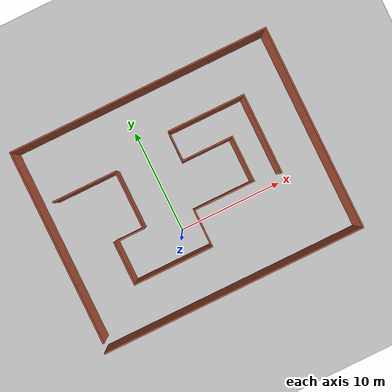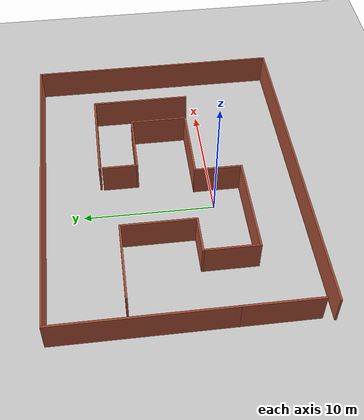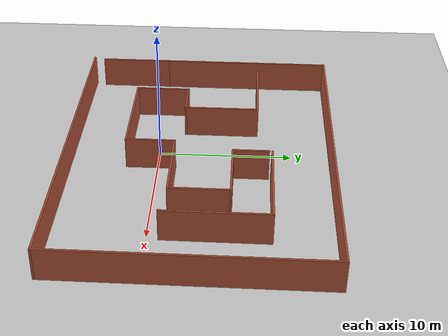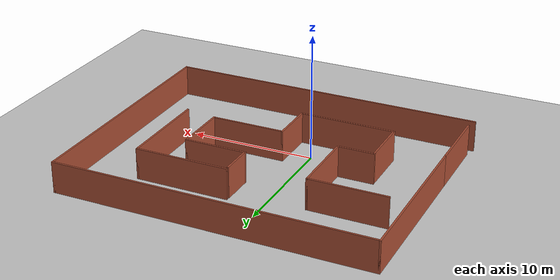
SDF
<sdf version="1.6">
 <world name="default">
  <include><uri>model://ground_plane</uri></include>
  <include><uri>model://sun</uri></include>
  <scene><shadows>false</shadows></scene>
  <physics type="ode">
   <real_time_update_rate>1000.0</real_time_update_rate>
   <max_step_size>0.001</max_step_size>
   <real_time_factor>1</real_time_factor>
   <ode>
    <solver>
     <type>quick</type>
     <iters>150</iters>
     <precon_iters>0</precon_iters>
     <sor>1.400000</sor>
     <use_dynamic_moi_rescaling>1</use_dynamic_moi_rescaling>
    </solver>
    <constraints>
     <cfm>0.00001</cfm>
     <erp>0.2</erp>
     <contact_max_correcting_vel>2000.000000</contact_max_correcting_vel>
     <contact_surface_layer>0.01000</contact_surface_layer>
    </constraints>
   </ode>
  </physics>
  <model name="h"><static>1</static><include><uri>model://h</uri></include></model>
 </world>
</sdf>

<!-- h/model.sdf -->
<sdf version='1.7'>
  <model name='h'>
    <pose>1.8566 3.16573 0 0 -0 0</pose>
    <link name='Wall_0'>
      <collision name='Wall_0_Collision'>
        <geometry>
          <box>
            <size>5.75 0.15 2.5</size>
          </box>
        </geometry>
        <pose>0 0 1.25 0 -0 0</pose>
      </collision>
      <visual name='Wall_0_Visual'>
        <pose>0 0 1.25 0 -0 0</pose>
        <geometry>
          <box>
            <size>5.75 0.15 2.5</size>
          </box>
        </geometry>
        <material>
          <script>
            <uri>file://media/materials/scripts/gazebo.material</uri>
            <name>Gazebo/Bricks</name>
          </script>
          <ambient>1 1 1 1</ambient>
        </material>
        <meta>
          <layer>0</layer>
        </meta>
      </visual>
      <pose>-12.425 -6.1 0 0 -0 -1.5708</pose>
    </link>
    <link name='Wall_10'>
      <collision name='Wall_10_Collision'>
        <geometry>
          <box>
            <size>4.25 0.15 2.5</size>
          </box>
        </geometry>
        <pose>0 0 1.25 0 -0 0</pose>
      </collision>
      <visual name='Wall_10_Visual'>
        <pose>0 0 1.25 0 -0 0</pose>
        <geometry>
          <box>
            <size>4.25 0.15 2.5</size>
          </box>
        </geometry>
        <material>
          <script>
            <uri>file://media/materials/scripts/gazebo.material</uri>
            <name>Gazebo/Bricks</name>
          </script>
          <ambient>1 1 1 1</ambient>
        </material>
        <meta>
          <layer>0</layer>
        </meta>
      </visual>
      <pose>-7.6496 -3.42895 0 0 -0 -1.5708</pose>
    </link>
    <link name='Wall_11'>
      <collision name='Wall_11_Collision'>
        <geometry>
          <box>
            <size>7.75 0.15 2.5</size>
          </box>
        </geometry>
        <pose>0 0 1.25 0 -0 0</pose>
      </collision>
      <visual name='Wall_11_Visual'>
        <pose>0 0 1.25 0 -0 0</pose>
        <geometry>
          <box>
            <size>7.75 0.15 2.5</size>
          </box>
        </geometry>
        <material>
          <script>
            <uri>file://media/materials/scripts/gazebo.material</uri>
            <name>Gazebo/Bricks</name>
          </script>
          <ambient>1 1 1 1</ambient>
        </material>
        <meta>
          <layer>0</layer>
        </meta>
      </visual>
      <pose>-3.8496 -5.47895 0 0 -0 0</pose>
    </link>
    <link name='Wall_12'>
      <collision name='Wall_12_Collision'>
        <geometry>
          <box>
            <size>3.75 0.15 2.5</size>
          </box>
        </geometry>
        <pose>0 0 1.25 0 -0 0</pose>
      </collision>
      <visual name='Wall_12_Visual'>
        <pose>0 0 1.25 0 -0 0</pose>
        <geometry>
          <box>
            <size>3.75 0.15 2.5</size>
          </box>
        </geometry>
        <material>
          <script>
            <uri>file://media/materials/scripts/gazebo.material</uri>
            <name>Gazebo/Bricks</name>
          </script>
          <ambient>1 1 1 1</ambient>
        </material>
        <meta>
          <layer>0</layer>
        </meta>
      </visual>
      <pose>-0.049599 -3.67895 0 0 -0 1.5708</pose>
    </link>
    <link name='Wall_13'>
      <collision name='Wall_13_Collision'>
        <geometry>
          <box>
            <size>6 0.15 2.5</size>
          </box>
        </geometry>
        <pose>0 0 1.25 0 -0 0</pose>
      </collision>
      <visual name='Wall_13_Visual'>
        <pose>0 0 1.25 0 -0 0</pose>
        <geometry>
          <box>
            <size>6 0.15 2.5</size>
          </box>
        </geometry>
        <material>
          <script>
            <uri>file://media/materials/scripts/gazebo.material</uri>
            <name>Gazebo/Bricks</name>
          </script>
          <ambient>1 1 1 1</ambient>
        </material>
        <meta>
          <layer>0</layer>
        </meta>
      </visual>
      <pose>2.8754 -1.87895 0 0 -0 0</pose>
    </link>
    <link name='Wall_14'>
      <collision name='Wall_14_Collision'>
        <geometry>
          <box>
            <size>4.5 0.15 2.5</size>
          </box>
        </geometry>
        <pose>0 0 1.25 0 -0 0</pose>
      </collision>
      <visual name='Wall_14_Visual'>
        <pose>0 0 1.25 0 -0 0</pose>
        <geometry>
          <box>
            <size>4.5 0.15 2.5</size>
          </box>
        </geometry>
        <material>
          <script>
            <uri>file://media/materials/scripts/gazebo.material</uri>
            <name>Gazebo/Bricks</name>
          </script>
          <ambient>1 1 1 1</ambient>
        </material>
        <meta>
          <layer>0</layer>
        </meta>
      </visual>
      <pose>5.8004 0.296046 0 0 -0 1.5708</pose>
    </link>
    <link name='Wall_15'>
      <collision name='Wall_15_Collision'>
        <geometry>
          <box>
            <size>5 0.15 2.5</size>
          </box>
        </geometry>
        <pose>0 0 1.25 0 -0 0</pose>
      </collision>
      <visual name='Wall_15_Visual'>
        <pose>0 0 1.25 0 -0 0</pose>
        <geometry>
          <box>
            <size>5 0.15 2.5</size>
          </box>
        </geometry>
        <material>
          <script>
            <uri>file://media/materials/scripts/gazebo.material</uri>
            <name>Gazebo/Bricks</name>
          </script>
          <ambient>1 1 1 1</ambient>
        </material>
        <meta>
          <layer>0</layer>
        </meta>
      </visual>
      <pose>3.3754 2.47105 0 0 -0 3.14159</pose>
    </link>
    <link name='Wall_16'>
      <collision name='Wall_16_Collision'>
        <geometry>
          <box>
            <size>2.75 0.15 2.5</size>
          </box>
        </geometry>
        <pose>0 0 1.25 0 -0 0</pose>
      </collision>
      <visual name='Wall_16_Visual'>
        <pose>0 0 1.25 0 -0 0</pose>
        <geometry>
          <box>
            <size>2.75 0.15 2.5</size>
          </box>
        </geometry>
        <material>
          <script>
            <uri>file://media/materials/scripts/gazebo.material</uri>
            <name>Gazebo/Bricks</name>
          </script>
          <ambient>1 1 1 1</ambient>
        </material>
        <meta>
          <layer>0</layer>
        </meta>
      </visual>
      <pose>0.950401 3.77105 0 0 -0 1.5708</pose>
    </link>
    <link name='Wall_18'>
      <collision name='Wall_18_Collision'>
        <geometry>
          <box>
            <size>7.5 0.15 2.5</size>
          </box>
        </geometry>
        <pose>0 0 1.25 0 -0 0</pose>
      </collision>
      <visual name='Wall_18_Visual'>
        <pose>0 0 1.25 0 -0 0</pose>
        <geometry>
          <box>
            <size>7.5 0.15 2.5</size>
          </box>
        </geometry>
        <material>
          <script>
            <uri>file://media/materials/scripts/gazebo.material</uri>
            <name>Gazebo/Bricks</name>
          </script>
          <ambient>1 1 1 1</ambient>
        </material>
        <meta>
          <layer>0</layer>
        </meta>
      </visual>
      <pose>4.65958 5.34396 0 0 -0 0</pose>
    </link>
    <link name='Wall_19'>
      <collision name='Wall_19_Collision'>
        <geometry>
          <box>
            <size>7.75 0.15 2.5</size>
          </box>
        </geometry>
        <pose>0 0 1.25 0 -0 0</pose>
      </collision>
      <visual name='Wall_19_Visual'>
        <pose>0 0 1.25 0 -0 0</pose>
        <geometry>
          <box>
            <size>7.75 0.15 2.5</size>
          </box>
        </geometry>
        <material>
          <script>
            <uri>file://media/materials/scripts/gazebo.material</uri>
            <name>Gazebo/Bricks</name>
          </script>
          <ambient>1 1 1 1</ambient>
        </material>
        <meta>
          <layer>0</layer>
        </meta>
      </visual>
      <pose>8.33458 1.54396 0 0 -0 -1.5708</pose>
    </link>
    <link name='Wall_2'>
      <collision name='Wall_2_Collision'>
        <geometry>
          <box>
            <size>13.25 0.15 2.5</size>
          </box>
        </geometry>
        <pose>0 0 1.25 0 -0 0</pose>
      </collision>
      <visual name='Wall_2_Visual'>
        <pose>0 0 1.25 0 -0 0</pose>
        <geometry>
          <box>
            <size>13.25 0.15 2.5</size>
          </box>
        </geometry>
        <material>
          <script>
            <uri>file://media/materials/scripts/gazebo.material</uri>
            <name>Gazebo/Bricks</name>
          </script>
          <ambient>1 1 1 1</ambient>
        </material>
        <meta>
          <layer>0</layer>
        </meta>
      </visual>
      <pose>-12.425 3.25 0 0 -0 1.5708</pose>
    </link>
    <link name='Wall_3'>
      <collision name='Wall_3_Collision'>
        <geometry>
          <box>
            <size>25.25 0.15 2.5</size>
          </box>
        </geometry>
        <pose>0 0 1.25 0 -0 0</pose>
      </collision>
      <visual name='Wall_3_Visual'>
        <pose>0 0 1.25 0 -0 0</pose>
        <geometry>
          <box>
            <size>25.25 0.15 2.5</size>
          </box>
        </geometry>
        <material>
          <script>
            <uri>file://media/materials/scripts/gazebo.material</uri>
            <name>Gazebo/Bricks</name>
          </script>
          <ambient>1 1 1 1</ambient>
        </material>
        <meta>
          <layer>0</layer>
        </meta>
      </visual>
      <pose>0.125 9.8 0 0 -0 0</pose>
    </link>
    <link name='Wall_4'>
      <collision name='Wall_4_Collision'>
        <geometry>
          <box>
            <size>19.75 0.15 2.5</size>
          </box>
        </geometry>
        <pose>0 0 1.25 0 -0 0</pose>
      </collision>
      <visual name='Wall_4_Visual'>
        <pose>0 0 1.25 0 -0 0</pose>
        <geometry>
          <box>
            <size>19.75 0.15 2.5</size>
          </box>
        </geometry>
        <material>
          <script>
            <uri>file://media/materials/scripts/gazebo.material</uri>
            <name>Gazebo/Bricks</name>
          </script>
          <ambient>1 1 1 1</ambient>
        </material>
        <meta>
          <layer>0</layer>
        </meta>
      </visual>
      <pose>12.675 0 0 0 -0 -1.5708</pose>
    </link>
    <link name='Wall_5'>
      <collision name='Wall_5_Collision'>
        <geometry>
          <box>
            <size>25.5 0.15 2.5</size>
          </box>
        </geometry>
        <pose>0 0 1.25 0 -0 0</pose>
      </collision>
      <visual name='Wall_5_Visual'>
        <pose>0 0 1.25 0 -0 0</pose>
        <geometry>
          <box>
            <size>25.5 0.15 2.5</size>
          </box>
        </geometry>
        <material>
          <script>
            <uri>file://media/materials/scripts/gazebo.material</uri>
            <name>Gazebo/Bricks</name>
          </script>
          <ambient>1 1 1 1</ambient>
        </material>
        <meta>
          <layer>0</layer>
        </meta>
      </visual>
      <pose>-0 -9.8 0 0 -0 3.14159</pose>
    </link>
    <link name='Wall_7'>
      <collision name='Wall_7_Collision'>
        <geometry>
          <box>
            <size>6.25 0.15 2.5</size>
          </box>
        </geometry>
        <pose>0 0 1.25 0 -0 0</pose>
      </collision>
      <visual name='Wall_7_Visual'>
        <pose>0 0 1.25 0 -0 0</pose>
        <geometry>
          <box>
            <size>6.25 0.15 2.5</size>
          </box>
        </geometry>
        <material>
          <script>
            <uri>file://media/materials/scripts/gazebo.material</uri>
            <name>Gazebo/Bricks</name>
          </script>
          <ambient>1 1 1 1</ambient>
        </material>
        <meta>
          <layer>0</layer>
        </meta>
      </visual>
      <pose>-7.8496 4.22105 0 0 -0 0</pose>
    </link>
    <link name='Wall_8'>
      <collision name='Wall_8_Collision'>
        <geometry>
          <box>
            <size>5.75 0.15 2.5</size>
          </box>
        </geometry>
        <pose>0 0 1.25 0 -0 0</pose>
      </collision>
      <visual name='Wall_8_Visual'>
        <pose>0 0 1.25 0 -0 0</pose>
        <geometry>
          <box>
            <size>5.75 0.15 2.5</size>
          </box>
        </geometry>
        <material>
          <script>
            <uri>file://media/materials/scripts/gazebo.material</uri>
            <name>Gazebo/Bricks</name>
          </script>
          <ambient>1 1 1 1</ambient>
        </material>
        <meta>
          <layer>0</layer>
        </meta>
      </visual>
      <pose>-4.7996 1.42105 0 0 -0 -1.5708</pose>
    </link>
    <link name='Wall_9'>
      <collision name='Wall_9_Collision'>
        <geometry>
          <box>
            <size>3 0.15 2.5</size>
          </box>
        </geometry>
        <pose>0 0 1.25 0 -0 0</pose>
      </collision>
      <visual name='Wall_9_Visual'>
        <pose>0 0 1.25 0 -0 0</pose>
        <geometry>
          <box>
            <size>3 0.15 2.5</size>
          </box>
        </geometry>
        <material>
          <script>
            <uri>file://media/materials/scripts/gazebo.material</uri>
            <name>Gazebo/Bricks</name>
          </script>
          <ambient>1 1 1 1</ambient>
        </material>
        <meta>
          <layer>0</layer>
        </meta>
      </visual>
      <pose>-6.2246 -1.37895 0 0 -0 3.14159</pose>
    </link>
    <static>1</static>
  </model>
</sdf>
